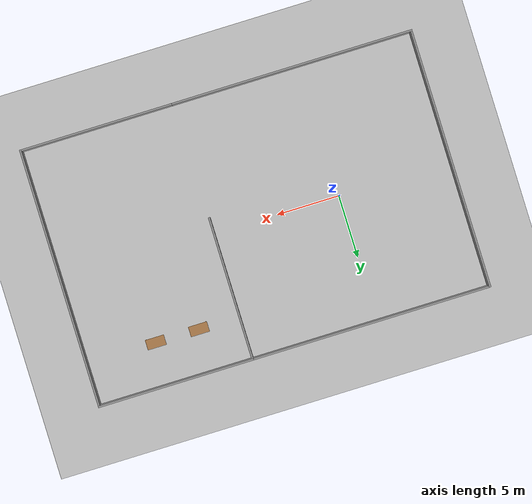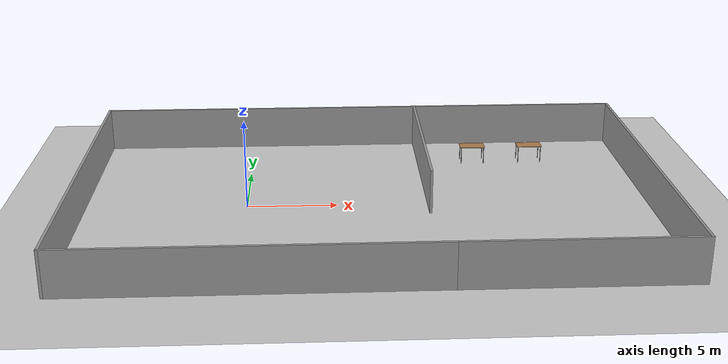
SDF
<sdf version="1.6">
 <world name="default">
  <light name="sun" type="directional">
   <pose>0 0 10 0 -0 0</pose>
   <diffuse>0.8 0.8 0.8 1</diffuse>
   <specular>0.2 0.2 0.2 1</specular>
   <attenuation>
    <range>1000</range>
    <constant>0.9</constant>
    <linear>0.01</linear>
    <quadratic>0.001</quadratic>
   </attenuation>
   <direction>-0.5 0.1 -0.9</direction>
  </light>
  <model name="ground_plane">
   <static>1</static>
   <link name="link">
    <collision name="collision">
     <geometry><plane><normal>0 0 1</normal><size>100 100</size></plane></geometry>
     <surface><friction><ode><mu>100</mu><mu2>50</mu2></ode></friction></surface>
    </collision>
    <visual name="visual">
     <cast_shadows>0</cast_shadows>
     <geometry><plane><normal>0 0 1</normal><size>100 100</size></plane></geometry>
     <material>
      <script><uri>file://media/materials/scripts/gazebo.material</uri><name>Gazebo/Grey</name></script>
     </material>
    </visual>
   </link>
  </model>
  <gravity>0 0 -9.8</gravity>
  <magnetic_field>6e-06 2.3e-05 -4.2e-05</magnetic_field>
  <atmosphere type="adiabatic"/>
  <physics name="default_physics" default="0" type="ode">
   <max_step_size>0.001</max_step_size>
   <real_time_factor>1</real_time_factor>
   <real_time_update_rate>1000</real_time_update_rate>
  </physics>
  <scene><ambient>0.4 0.4 0.4 1</ambient><background>0.7 0.7 0.7 1</background><shadows>1</shadows></scene>
  <audio><device>default</device></audio>
  <spherical_coordinates>
   <surface_model>EARTH_WGS84</surface_model>
   <latitude_deg>0</latitude_deg>
   <longitude_deg>0</longitude_deg>
   <elevation>0</elevation>
   <heading_deg>0</heading_deg>
  </spherical_coordinates>
  <model name="modelarech">
   <pose>6.72266 -0.220693 0 0 -0 0</pose>
   <link name="Wall_10">
    <collision name="Wall_10_Collision">
     <geometry><box><size>12.5 0.15 2.5</size></box></geometry>
     <pose>0 0 1.25 0 -0 0</pose>
    </collision>
    <visual name="Wall_10_Visual">
     <pose>0 0 1.25 0 -0 0</pose>
     <geometry><box><size>12.5 0.15 2.5</size></box></geometry>
     <material>
      <script><uri>file://media/materials/scripts/gazebo.material</uri><name>Gazebo/Grey</name></script>
      <ambient>1 1 1 1</ambient>
     </material>
     <meta><layer>0</layer></meta>
    </visual>
    <pose>9.55 10.3 0 0 -0 0</pose>
   </link>
   <link name="Wall_11">
    <collision name="Wall_11_Collision">
     <geometry><box><size>20.75 0.15 2.5</size></box></geometry>
     <pose>0 0 1.25 0 -0 0</pose>
    </collision>
    <visual name="Wall_11_Visual">
     <pose>0 0 1.25 0 -0 0</pose>
     <geometry><box><size>20.75 0.15 2.5</size></box></geometry>
     <material>
      <script><uri>file://media/materials/scripts/gazebo.material</uri><name>Gazebo/Grey</name></script>
      <ambient>1 1 1 1</ambient>
     </material>
     <meta><layer>0</layer></meta>
    </visual>
    <pose>15.725 0 0 0 -0 -1.5708</pose>
   </link>
   <link name="Wall_14">
    <collision name="Wall_14_Collision">
     <geometry><box><size>12.25 0.15 2.5</size></box></geometry>
     <pose>0 0 1.25 0 -0 0</pose>
    </collision>
    <visual name="Wall_14_Visual">
     <pose>0 0 1.25 0 -0 0</pose>
     <geometry><box><size>12.25 0.15 2.5</size></box></geometry>
     <material>
      <script><uri>file://media/materials/scripts/gazebo.material</uri><name>Gazebo/Grey</name></script>
      <ambient>1 1 1 1</ambient>
     </material>
     <meta><layer>0</layer></meta>
    </visual>
    <pose>9.675 -10.3 0 0 -0 3.14159</pose>
   </link>
   <link name="Wall_18">
    <collision name="Wall_18_Collision">
     <geometry><box><size>11.5 0.15 2.5</size></box></geometry>
     <pose>0 0 1.25 0 -0 0</pose>
    </collision>
    <visual name="Wall_18_Visual">
     <pose>0 0 1.25 0 -0 0</pose>
     <geometry><box><size>11.5 0.15 2.5</size></box></geometry>
     <material>
      <script><uri>file://media/materials/scripts/gazebo.material</uri><name>Gazebo/Grey</name></script>
      <ambient>1 1 1 1</ambient>
     </material>
     <meta><layer>0</layer></meta>
    </visual>
    <pose>3.375 4.625 0 0 -0 -1.5708</pose>
   </link>
   <link name="Wall_7">
    <collision name="Wall_7_Collision">
     <geometry><box><size>19.5 0.15 2.5</size></box></geometry>
     <pose>0 0 1.25 0 -0 0</pose>
    </collision>
    <visual name="Wall_7_Visual">
     <pose>0 0 1.25 0 -0 0</pose>
     <geometry><box><size>19.5 0.15 2.5</size></box></geometry>
     <material>
      <script><uri>file://media/materials/scripts/gazebo.material</uri><name>Gazebo/Grey</name></script>
      <ambient>1 1 1 1</ambient>
     </material>
     <meta><layer>0</layer></meta>
    </visual>
    <pose>-6.05 -10.3 0 0 -0 3.14159</pose>
   </link>
   <link name="Wall_8">
    <collision name="Wall_8_Collision">
     <geometry><box><size>20.75 0.15 2.5</size></box></geometry>
     <pose>0 0 1.25 0 -0 0</pose>
    </collision>
    <visual name="Wall_8_Visual">
     <pose>0 0 1.25 0 -0 0</pose>
     <geometry><box><size>20.75 0.15 2.5</size></box></geometry>
     <material>
      <script><uri>file://media/materials/scripts/gazebo.material</uri><name>Gazebo/Grey</name></script>
      <ambient>1 1 1 1</ambient>
     </material>
     <meta><layer>0</layer></meta>
    </visual>
    <pose>-15.725 0 0 0 -0 1.5708</pose>
   </link>
   <link name="Wall_9">
    <collision name="Wall_9_Collision">
     <geometry><box><size>19.25 0.15 2.5</size></box></geometry>
     <pose>0 0 1.25 0 -0 0</pose>
    </collision>
    <visual name="Wall_9_Visual">
     <pose>0 0 1.25 0 -0 0</pose>
     <geometry><box><size>19.25 0.15 2.5</size></box></geometry>
     <material>
      <script><uri>file://media/materials/scripts/gazebo.material</uri><name>Gazebo/Grey</name></script>
      <ambient>1 1 1 1</ambient>
     </material>
     <meta><layer>0</layer></meta>
    </visual>
    <pose>-6.175 10.3 0 0 -0 0</pose>
   </link>
   <static>1</static>
  </model>
  <model name="table">
   <static>1</static>
   <link name="link">
    <collision name="surface">
     <pose>0 0 1 0 -0 0</pose>
     <geometry><box><size>1.5 0.8 0.03</size></box></geometry>
     <surface><friction><ode><mu>0.6</mu><mu2>0.6</mu2></ode></friction></surface>
    </collision>
    <visual name="visual1">
     <pose>0 0 1 0 -0 0</pose>
     <geometry><box><size>1.5 0.8 0.03</size></box></geometry>
     <material>
      <script><uri>file://media/materials/scripts/gazebo.material</uri><name>Gazebo/Wood</name></script>
     </material>
    </visual>
    <collision name="front_left_leg">
     <pose>0.68 0.38 0.5 0 -0 0</pose>
     <geometry><cylinder><radius>0.02</radius><length>1</length></cylinder></geometry>
    </collision>
    <visual name="front_left_leg">
     <pose>0.68 0.38 0.5 0 -0 0</pose>
     <geometry><cylinder><radius>0.02</radius><length>1</length></cylinder></geometry>
     <material>
      <script><uri>file://media/materials/scripts/gazebo.material</uri><name>Gazebo/Grey</name></script>
     </material>
    </visual>
    <collision name="front_right_leg">
     <pose>0.68 -0.38 0.5 0 -0 0</pose>
     <geometry><cylinder><radius>0.02</radius><length>1</length></cylinder></geometry>
    </collision>
    <visual name="front_right_leg">
     <pose>0.68 -0.38 0.5 0 -0 0</pose>
     <geometry><cylinder><radius>0.02</radius><length>1</length></cylinder></geometry>
     <material>
      <script><uri>file://media/materials/scripts/gazebo.material</uri><name>Gazebo/Grey</name></script>
     </material>
    </visual>
    <collision name="back_right_leg">
     <pose>-0.68 -0.38 0.5 0 -0 0</pose>
     <geometry><cylinder><radius>0.02</radius><length>1</length></cylinder></geometry>
    </collision>
    <visual name="back_right_leg">
     <pose>-0.68 -0.38 0.5 0 -0 0</pose>
     <geometry><cylinder><radius>0.02</radius><length>1</length></cylinder></geometry>
     <material>
      <script><uri>file://media/materials/scripts/gazebo.material</uri><name>Gazebo/Grey</name></script>
     </material>
    </visual>
    <collision name="back_left_leg">
     <pose>-0.68 0.38 0.5 0 -0 0</pose>
     <geometry><cylinder><radius>0.02</radius><length>1</length></cylinder></geometry>
    </collision>
    <visual name="back_left_leg">
     <pose>-0.68 0.38 0.5 0 -0 0</pose>
     <geometry><cylinder><radius>0.02</radius><length>1</length></cylinder></geometry>
     <material>
      <script><uri>file://media/materials/scripts/gazebo.material</uri><name>Gazebo/Grey</name></script>
     </material>
    </visual>
   </link>
   <pose>13.3964 6.67605 0 0 -0 0</pose>
  </model>
  <model name="table_0">
   <static>1</static>
   <link name="link">
    <collision name="surface">
     <pose>0 0 1 0 -0 0</pose>
     <geometry><box><size>1.5 0.8 0.03</size></box></geometry>
     <surface><friction><ode><mu>0.6</mu><mu2>0.6</mu2></ode></friction></surface>
    </collision>
    <visual name="visual1">
     <pose>0 0 1 0 -0 0</pose>
     <geometry><box><size>1.5 0.8 0.03</size></box></geometry>
     <material>
      <script><uri>file://media/materials/scripts/gazebo.material</uri><name>Gazebo/Wood</name></script>
     </material>
    </visual>
    <collision name="front_left_leg">
     <pose>0.68 0.38 0.5 0 -0 0</pose>
     <geometry><cylinder><radius>0.02</radius><length>1</length></cylinder></geometry>
    </collision>
    <visual name="front_left_leg">
     <pose>0.68 0.38 0.5 0 -0 0</pose>
     <geometry><cylinder><radius>0.02</radius><length>1</length></cylinder></geometry>
     <material>
      <script><uri>file://media/materials/scripts/gazebo.material</uri><name>Gazebo/Grey</name></script>
     </material>
    </visual>
    <collision name="front_right_leg">
     <pose>0.68 -0.38 0.5 0 -0 0</pose>
     <geometry><cylinder><radius>0.02</radius><length>1</length></cylinder></geometry>
    </collision>
    <visual name="front_right_leg">
     <pose>0.68 -0.38 0.5 0 -0 0</pose>
     <geometry><cylinder><radius>0.02</radius><length>1</length></cylinder></geometry>
     <material>
      <script><uri>file://media/materials/scripts/gazebo.material</uri><name>Gazebo/Grey</name></script>
     </material>
    </visual>
    <collision name="back_right_leg">
     <pose>-0.68 -0.38 0.5 0 -0 0</pose>
     <geometry><cylinder><radius>0.02</radius><length>1</length></cylinder></geometry>
    </collision>
    <visual name="back_right_leg">
     <pose>-0.68 -0.38 0.5 0 -0 0</pose>
     <geometry><cylinder><radius>0.02</radius><length>1</length></cylinder></geometry>
     <material>
      <script><uri>file://media/materials/scripts/gazebo.material</uri><name>Gazebo/Grey</name></script>
     </material>
    </visual>
    <collision name="back_left_leg">
     <pose>-0.68 0.38 0.5 0 -0 0</pose>
     <geometry><cylinder><radius>0.02</radius><length>1</length></cylinder></geometry>
    </collision>
    <visual name="back_left_leg">
     <pose>-0.68 0.38 0.5 0 -0 0</pose>
     <geometry><cylinder><radius>0.02</radius><length>1</length></cylinder></geometry>
     <material>
      <script><uri>file://media/materials/scripts/gazebo.material</uri><name>Gazebo/Grey</name></script>
     </material>
    </visual>
   </link>
   <pose>16.8844 6.67178 0 0 -0 0</pose>
  </model>
  <plugin filename="libcollision_map_creator.so" name="collision_map_creator"/>
 </world>
</sdf>
